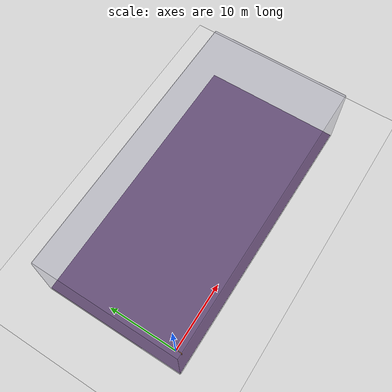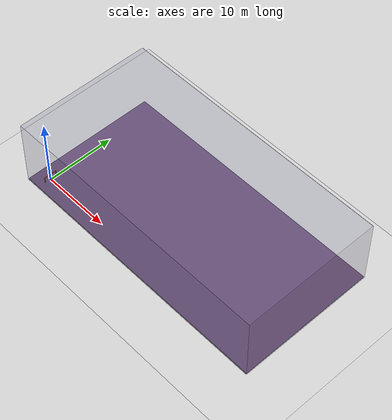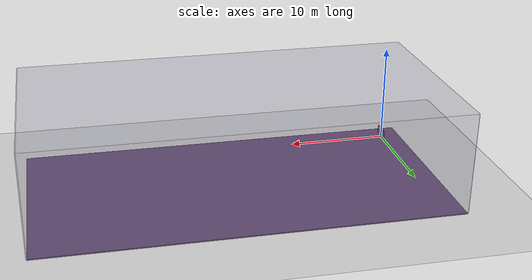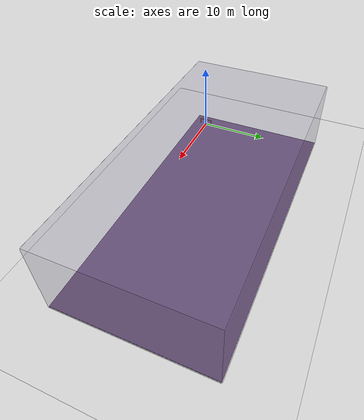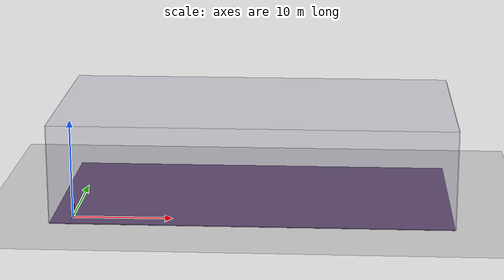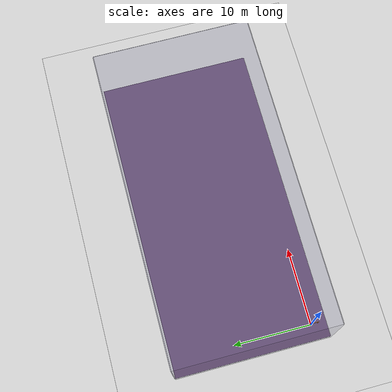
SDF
<sdf version="1.4">
 <world name="smart_drone_simple_world">
  <include><uri>model://ground_plane</uri></include>
  <include><uri>model://sun</uri></include>
  <model name="smart_drone_simple_building">
   <link name="floor">
    <pose>18 8 -0.05 0 -0 0</pose>
    <inertial>
     <mass>1</mass>
     <inertia>
      <ixx>0.166667</ixx>
      <ixy>0</ixy>
      <ixz>0</ixz>
      <iyy>0.166667</iyy>
      <iyz>0</iyz>
      <izz>0.166667</izz>
     </inertia>
    </inertial>
    <visual name="visual">
     <geometry><box><size>40 20 0.2</size></box></geometry>
     <material>
      <script><name>Gazebo/Grey</name><uri>file://media/materials/scripts/gazebo.material</uri></script>
      <shader type="pixel"><normal_map>__default__</normal_map></shader>
      <ambient>0.4 0.3 0.45 1</ambient>
      <diffuse>0.7 0.7 0.7 1</diffuse>
      <specular>0.01 0.01 0.01 1</specular>
      <emissive>0 0 0 1</emissive>
     </material>
    </visual>
   </link>
   <link name="right_wall">
    <pose>18 -2 5 0 -0 0</pose>
    <inertial>
     <mass>1</mass>
     <inertia>
      <ixx>0.166667</ixx>
      <ixy>0</ixy>
      <ixz>0</ixz>
      <iyy>0.166667</iyy>
      <iyz>0</iyz>
      <izz>0.166667</izz>
     </inertia>
    </inertial>
    <visual name="visual">
     <geometry><box><size>40 0.2 10</size></box></geometry>
     <material>
      <lighting>1</lighting>
      <script><uri>file://media/materials/scripts/gazebo.material</uri><name>Gazebo/Grey</name></script>
      <shader type="pixel"><normal_map>__default__</normal_map></shader>
      <ambient>0.3 0.3 0.45 1</ambient>
      <diffuse>0.7 0.7 0.7 1</diffuse>
      <specular>0.01 0.01 0.01 1</specular>
      <emissive>0 0 0 1</emissive>
     </material>
     <transparency>0.95</transparency>
    </visual>
    <collision name="collision">
     <geometry><box><size>40 0.2 10</size></box></geometry>
     <surface>
      <friction>
       <ode><mu>1</mu><mu2>1</mu2><fdir1>0 0 0</fdir1><slip1>0</slip1><slip2>0</slip2></ode>
       <torsional>
        <coefficient>1</coefficient>
        <patch_radius>0</patch_radius>
        <surface_radius>0</surface_radius>
        <use_patch_radius>1</use_patch_radius>
        <ode><slip>0</slip></ode>
       </torsional>
      </friction>
      <bounce><restitution_coefficient>0</restitution_coefficient><threshold>1e+06</threshold></bounce>
      <contact>
       <collide_without_contact>0</collide_without_contact>
       <collide_without_contact_bitmask>1</collide_without_contact_bitmask>
       <collide_bitmask>1</collide_bitmask>
       <ode>
        <soft_cfm>0</soft_cfm>
        <soft_erp>0.2</soft_erp>
        <kp>1e+13</kp>
        <kd>1</kd>
        <max_vel>0.01</max_vel>
        <min_depth>0</min_depth>
       </ode>
       <bullet>
        <split_impulse>1</split_impulse>
        <split_impulse_penetration_threshold>-0.01</split_impulse_penetration_threshold>
        <soft_cfm>0</soft_cfm>
        <soft_erp>0.2</soft_erp>
        <kp>1e+13</kp>
        <kd>1</kd>
       </bullet>
      </contact>
     </surface>
    </collision>
   </link>
   <link name="left_wall">
    <pose>18 18 5 0 -0 0</pose>
    <inertial>
     <mass>1</mass>
     <inertia>
      <ixx>0.166667</ixx>
      <ixy>0</ixy>
      <ixz>0</ixz>
      <iyy>0.166667</iyy>
      <iyz>0</iyz>
      <izz>0.166667</izz>
     </inertia>
    </inertial>
    <visual name="visual">
     <geometry><box><size>40 0.2 10</size></box></geometry>
     <material>
      <lighting>1</lighting>
      <script><uri>file://media/materials/scripts/gazebo.material</uri><name>Gazebo/Grey</name></script>
      <shader type="pixel"><normal_map>__default__</normal_map></shader>
      <ambient>0.3 0.3 0.45 1</ambient>
      <diffuse>0.7 0.7 0.7 1</diffuse>
      <specular>0.01 0.01 0.01 1</specular>
      <emissive>0 0 0 1</emissive>
     </material>
     <transparency>0.95</transparency>
    </visual>
    <collision name="collision">
     <geometry><box><size>40 0.2 10</size></box></geometry>
     <surface>
      <friction>
       <ode><mu>1</mu><mu2>1</mu2><fdir1>0 0 0</fdir1><slip1>0</slip1><slip2>0</slip2></ode>
       <torsional>
        <coefficient>1</coefficient>
        <patch_radius>0</patch_radius>
        <surface_radius>0</surface_radius>
        <use_patch_radius>1</use_patch_radius>
        <ode><slip>0</slip></ode>
       </torsional>
      </friction>
      <bounce><restitution_coefficient>0</restitution_coefficient><threshold>1e+06</threshold></bounce>
      <contact>
       <collide_without_contact>0</collide_without_contact>
       <collide_without_contact_bitmask>1</collide_without_contact_bitmask>
       <collide_bitmask>1</collide_bitmask>
       <ode>
        <soft_cfm>0</soft_cfm>
        <soft_erp>0.2</soft_erp>
        <kp>1e+13</kp>
        <kd>1</kd>
        <max_vel>0.01</max_vel>
        <min_depth>0</min_depth>
       </ode>
       <bullet>
        <split_impulse>1</split_impulse>
        <split_impulse_penetration_threshold>-0.01</split_impulse_penetration_threshold>
        <soft_cfm>0</soft_cfm>
        <soft_erp>0.2</soft_erp>
        <kp>1e+13</kp>
        <kd>1</kd>
       </bullet>
      </contact>
     </surface>
    </collision>
   </link>
   <link name="front_wall">
    <pose>-2 8 5 0 -0 0</pose>
    <inertial>
     <mass>1</mass>
     <inertia>
      <ixx>0.166667</ixx>
      <ixy>0</ixy>
      <ixz>0</ixz>
      <iyy>0.166667</iyy>
      <iyz>0</iyz>
      <izz>0.166667</izz>
     </inertia>
    </inertial>
    <visual name="visual">
     <geometry><box><size>0.2 20 10</size></box></geometry>
     <material>
      <lighting>1</lighting>
      <script><uri>file://media/materials/scripts/gazebo.material</uri><name>Gazebo/Grey</name></script>
      <shader type="pixel"><normal_map>__default__</normal_map></shader>
      <ambient>0.3 0.3 0.45 1</ambient>
      <diffuse>0.7 0.7 0.7 1</diffuse>
      <specular>0.01 0.01 0.01 1</specular>
      <emissive>0 0 0 1</emissive>
     </material>
     <transparency>0.9</transparency>
    </visual>
    <collision name="collision">
     <geometry><box><size>0.2 20 10</size></box></geometry>
     <surface>
      <friction>
       <ode><mu>1</mu><mu2>1</mu2><fdir1>0 0 0</fdir1><slip1>0</slip1><slip2>0</slip2></ode>
       <torsional>
        <coefficient>1</coefficient>
        <patch_radius>0</patch_radius>
        <surface_radius>0</surface_radius>
        <use_patch_radius>1</use_patch_radius>
        <ode><slip>0</slip></ode>
       </torsional>
      </friction>
      <bounce><restitution_coefficient>0</restitution_coefficient><threshold>1e+06</threshold></bounce>
      <contact>
       <collide_without_contact>0</collide_without_contact>
       <collide_without_contact_bitmask>1</collide_without_contact_bitmask>
       <collide_bitmask>1</collide_bitmask>
       <ode>
        <soft_cfm>0</soft_cfm>
        <soft_erp>0.2</soft_erp>
        <kp>1e+13</kp>
        <kd>1</kd>
        <max_vel>0.01</max_vel>
        <min_depth>0</min_depth>
       </ode>
       <bullet>
        <split_impulse>1</split_impulse>
        <split_impulse_penetration_threshold>-0.01</split_impulse_penetration_threshold>
        <soft_cfm>0</soft_cfm>
        <soft_erp>0.2</soft_erp>
        <kp>1e+13</kp>
        <kd>1</kd>
       </bullet>
      </contact>
     </surface>
    </collision>
   </link>
   <link name="rear_wall">
    <pose>38 8 5 0 -0 0</pose>
    <inertial>
     <mass>1</mass>
     <inertia>
      <ixx>0.166667</ixx>
      <ixy>0</ixy>
      <ixz>0</ixz>
      <iyy>0.166667</iyy>
      <iyz>0</iyz>
      <izz>0.166667</izz>
     </inertia>
    </inertial>
    <visual name="visual">
     <geometry><box><size>0.2 20 10</size></box></geometry>
     <material>
      <lighting>1</lighting>
      <script><uri>file://media/materials/scripts/gazebo.material</uri><name>Gazebo/Grey</name></script>
      <shader type="pixel"><normal_map>__default__</normal_map></shader>
      <ambient>0.3 0.3 0.45 1</ambient>
      <diffuse>0.7 0.7 0.7 1</diffuse>
      <specular>0.01 0.01 0.01 1</specular>
      <emissive>0 0 0 1</emissive>
     </material>
     <transparency>0.9</transparency>
    </visual>
    <collision name="collision">
     <geometry><box><size>0.2 20 10</size></box></geometry>
     <surface>
      <friction>
       <ode><mu>1</mu><mu2>1</mu2><fdir1>0 0 0</fdir1><slip1>0</slip1><slip2>0</slip2></ode>
       <torsional>
        <coefficient>1</coefficient>
        <patch_radius>0</patch_radius>
        <surface_radius>0</surface_radius>
        <use_patch_radius>1</use_patch_radius>
        <ode><slip>0</slip></ode>
       </torsional>
      </friction>
      <bounce><restitution_coefficient>0</restitution_coefficient><threshold>1e+06</threshold></bounce>
      <contact>
       <collide_without_contact>0</collide_without_contact>
       <collide_without_contact_bitmask>1</collide_without_contact_bitmask>
       <collide_bitmask>1</collide_bitmask>
       <ode>
        <soft_cfm>0</soft_cfm>
        <soft_erp>0.2</soft_erp>
        <kp>1e+13</kp>
        <kd>1</kd>
        <max_vel>0.01</max_vel>
        <min_depth>0</min_depth>
       </ode>
       <bullet>
        <split_impulse>1</split_impulse>
        <split_impulse_penetration_threshold>-0.01</split_impulse_penetration_threshold>
        <soft_cfm>0</soft_cfm>
        <soft_erp>0.2</soft_erp>
        <kp>1e+13</kp>
        <kd>1</kd>
       </bullet>
      </contact>
     </surface>
    </collision>
   </link>
   <link name="ceiling">
    <pose>18 8 10 0 -0 0</pose>
    <inertial>
     <mass>1</mass>
     <inertia>
      <ixx>0.166667</ixx>
      <ixy>0</ixy>
      <ixz>0</ixz>
      <iyy>0.166667</iyy>
      <iyz>0</iyz>
      <izz>0.166667</izz>
     </inertia>
    </inertial>
    <visual name="visual">
     <geometry><box><size>40 20 0.2</size></box></geometry>
     <material>
      <lighting>1</lighting>
      <script><uri>file://media/materials/scripts/gazebo.material</uri><name>Gazebo/Grey</name></script>
      <shader type="pixel"><normal_map>__default__</normal_map></shader>
      <ambient>0.3 0.3 0.45 1</ambient>
      <diffuse>0.7 0.7 0.7 1</diffuse>
      <specular>0.01 0.01 0.01 1</specular>
      <emissive>0 0 0 1</emissive>
     </material>
     <transparency>0.95</transparency>
    </visual>
    <collision name="collision">
     <geometry><box><size>40 20 0.2</size></box></geometry>
     <surface>
      <friction>
       <ode><mu>1</mu><mu2>1</mu2><fdir1>0 0 0</fdir1><slip1>0</slip1><slip2>0</slip2></ode>
       <torsional>
        <coefficient>1</coefficient>
        <patch_radius>0</patch_radius>
        <surface_radius>0</surface_radius>
        <use_patch_radius>1</use_patch_radius>
        <ode><slip>0</slip></ode>
       </torsional>
      </friction>
      <bounce><restitution_coefficient>0</restitution_coefficient><threshold>1e+06</threshold></bounce>
      <contact>
       <collide_without_contact>0</collide_without_contact>
       <collide_without_contact_bitmask>1</collide_without_contact_bitmask>
       <collide_bitmask>1</collide_bitmask>
       <ode>
        <soft_cfm>0</soft_cfm>
        <soft_erp>0.2</soft_erp>
        <kp>1e+13</kp>
        <kd>1</kd>
        <max_vel>0.01</max_vel>
        <min_depth>0</min_depth>
       </ode>
       <bullet>
        <split_impulse>1</split_impulse>
        <split_impulse_penetration_threshold>-0.01</split_impulse_penetration_threshold>
        <soft_cfm>0</soft_cfm>
        <soft_erp>0.2</soft_erp>
        <kp>1e+13</kp>
        <kd>1</kd>
       </bullet>
      </contact>
     </surface>
    </collision>
   </link>
   <static>1</static>
  </model>
  <model name="smart_drone_orange_gate0">
   <link name="left">
    <pose>0 -0.9 0 0 -0 0</pose>
    <inertial>
     <mass>1</mass>
     <inertia>
      <ixx>0.166667</ixx>
      <ixy>0</ixy>
      <ixz>0</ixz>
      <iyy>0.166667</iyy>
      <iyz>0</iyz>
      <izz>0.166667</izz>
     </inertia>
     <pose>0 -0.9 0 0 -0 0</pose>
    </inertial>
    <visual name="visual">
     <geometry><box><size>0.05 0.1 2</size></box></geometry>
     <material>
      <lighting>1</lighting>
      <script><uri>file://media/materials/scripts/gazebo.material</uri><name>Gazebo/Grey</name></script>
      <shader type="pixel"><normal_map>__default__</normal_map></shader>
      <ambient>0.9 0.54 0.18 1</ambient>
      <diffuse>0.9 0.54 0.18 1</diffuse>
      <specular>0.9 0.54 0.18 1</specular>
      <emissive>0 0 0 1</emissive>
     </material>
    </visual>
    <collision name="collision">
     <geometry><box><size>0.05 0.1 2</size></box></geometry>
     <surface>
      <friction>
       <ode><mu>1</mu><mu2>1</mu2><fdir1>0 0 0</fdir1><slip1>0</slip1><slip2>0</slip2></ode>
       <torsional>
        <coefficient>1</coefficient>
        <patch_radius>0</patch_radius>
        <surface_radius>0</surface_radius>
        <use_patch_radius>1</use_patch_radius>
        <ode><slip>0</slip></ode>
       </torsional>
      </friction>
      <bounce><restitution_coefficient>0</restitution_coefficient><threshold>1e+06</threshold></bounce>
      <contact>
       <collide_without_contact>0</collide_without_contact>
       <collide_without_contact_bitmask>1</collide_without_contact_bitmask>
       <collide_bitmask>1</collide_bitmask>
       <ode>
        <soft_cfm>0</soft_cfm>
        <soft_erp>0.2</soft_erp>
        <kp>1e+13</kp>
        <kd>1</kd>
        <max_vel>0.01</max_vel>
        <min_depth>0</min_depth>
       </ode>
       <bullet>
        <split_impulse>1</split_impulse>
        <split_impulse_penetration_threshold>-0.01</split_impulse_penetration_threshold>
        <soft_cfm>0</soft_cfm>
        <soft_erp>0.2</soft_erp>
        <kp>1e+13</kp>
        <kd>1</kd>
       </bullet>
      </contact>
     </surface>
    </collision>
   </link>
   <link name="top">
    <pose>0 0 0.95 0 -0 0</pose>
    <inertial>
     <mass>1</mass>
     <inertia>
      <ixx>0.166667</ixx>
      <ixy>0</ixy>
      <ixz>0</ixz>
      <iyy>0.166667</iyy>
      <iyz>0</iyz>
      <izz>0.166667</izz>
     </inertia>
     <pose>0 0 0.95 0 -0 0</pose>
    </inertial>
    <visual name="visual">
     <geometry><box><size>0.05 1.7 0.1</size></box></geometry>
     <material>
      <lighting>1</lighting>
      <script><uri>file://media/materials/scripts/gazebo.material</uri><name>Gazebo/Grey</name></script>
      <shader type="pixel"><normal_map>__default__</normal_map></shader>
      <ambient>0.9 0.54 0.18 1</ambient>
      <diffuse>0.9 0.54 0.18 1</diffuse>
      <specular>0.9 0.54 0.18 1</specular>
      <emissive>0 0 0 1</emissive>
     </material>
    </visual>
    <collision name="collision">
     <geometry><box><size>0.05 1.7 0.1</size></box></geometry>
     <surface>
      <friction>
       <ode><mu>1</mu><mu2>1</mu2><fdir1>0 0 0</fdir1><slip1>0</slip1><slip2>0</slip2></ode>
       <torsional>
        <coefficient>1</coefficient>
        <patch_radius>0</patch_radius>
        <surface_radius>0</surface_radius>
        <use_patch_radius>1</use_patch_radius>
        <ode><slip>0</slip></ode>
       </torsional>
      </friction>
      <bounce><restitution_coefficient>0</restitution_coefficient><threshold>1e+06</threshold></bounce>
      <contact>
       <collide_without_contact>0</collide_without_contact>
       <collide_without_contact_bitmask>1</collide_without_contact_bitmask>
       <collide_bitmask>1</collide_bitmask>
       <ode>
        <soft_cfm>0</soft_cfm>
        <soft_erp>0.2</soft_erp>
        <kp>1e+13</kp>
        <kd>1</kd>
        <max_vel>0.01</max_vel>
        <min_depth>0</min_depth>
       </ode>
       <bullet>
        <split_impulse>1</split_impulse>
        <split_impulse_penetration_threshold>-0.01</split_impulse_penetration_threshold>
        <soft_cfm>0</soft_cfm>
        <soft_erp>0.2</soft_erp>
        <kp>1e+13</kp>
        <kd>1</kd>
       </bullet>
      </contact>
     </surface>
    </collision>
   </link>
   <link name="bot">
    <pose>0 0 -0.95 0 -0 0</pose>
    <inertial>
     <mass>1</mass>
     <inertia>
      <ixx>0.166667</ixx>
      <ixy>0</ixy>
      <ixz>0</ixz>
      <iyy>0.166667</iyy>
      <iyz>0</iyz>
      <izz>0.166667</izz>
     </inertia>
     <pose>0 0 -0.95 0 -0 0</pose>
    </inertial>
    <visual name="visual">
     <geometry><box><size>0.05 1.7 0.1</size></box></geometry>
     <material>
      <lighting>1</lighting>
      <script><uri>file://media/materials/scripts/gazebo.material</uri><name>Gazebo/Grey</name></script>
      <shader type="pixel"><normal_map>__default__</normal_map></shader>
      <ambient>0.9 0.54 0.18 1</ambient>
      <diffuse>0.9 0.54 0.18 1</diffuse>
      <specular>0.9 0.54 0.18 1</specular>
      <emissive>0 0 0 1</emissive>
     </material>
    </visual>
    <collision name="collision">
     <geometry><box><size>0.05 1.7 0.1</size></box></geometry>
     <surface>
      <friction>
       <ode><mu>1</mu><mu2>1</mu2><fdir1>0 0 0</fdir1><slip1>0</slip1><slip2>0</slip2></ode>
       <torsional>
        <coefficient>1</coefficient>
        <patch_radius>0</patch_radius>
        <surface_radius>0</surface_radius>
        <use_patch_radius>1</use_patch_radius>
        <ode><slip>0</slip></ode>
       </torsional>
      </friction>
      <bounce><restitution_coefficient>0</restitution_coefficient><threshold>1e+06</threshold></bounce>
      <contact>
       <collide_without_contact>0</collide_without_contact>
       <collide_without_contact_bitmask>1</collide_without_contact_bitmask>
       <collide_bitmask>1</collide_bitmask>
       <ode>
        <soft_cfm>0</soft_cfm>
        <soft_erp>0.2</soft_erp>
        <kp>1e+13</kp>
        <kd>1</kd>
        <max_vel>0.01</max_vel>
        <min_depth>0</min_depth>
       </ode>
       <bullet>
        <split_impulse>1</split_impulse>
        <split_impulse_penetration_threshold>-0.01</split_impulse_penetration_threshold>
        <soft_cfm>0</soft_cfm>
        <soft_erp>0.2</soft_erp>
        <kp>1e+13</kp>
        <kd>1</kd>
       </bullet>
      </contact>
     </surface>
    </collision>
   </link>
   <link name="right">
    <pose>0 0.9 0 0 -0 0</pose>
    <inertial>
     <mass>1</mass>
     <inertia>
      <ixx>0.166667</ixx>
      <ixy>0</ixy>
      <ixz>0</ixz>
      <iyy>0.166667</iyy>
      <iyz>0</iyz>
      <izz>0.166667</izz>
     </inertia>
     <pose>0 0.9 0 0 -0 0</pose>
    </inertial>
    <visual name="visual">
     <geometry><box><size>0.05 0.1 2</size></box></geometry>
     <material>
      <lighting>1</lighting>
      <script><uri>file://media/materials/scripts/gazebo.material</uri><name>Gazebo/Grey</name></script>
      <shader type="pixel"><normal_map>__default__</normal_map></shader>
      <ambient>0.9 0.54 0.18 1</ambient>
      <diffuse>0.9 0.54 0.18 1</diffuse>
      <specular>0.9 0.54 0.18 1</specular>
      <emissive>0 0 0 1</emissive>
     </material>
    </visual>
    <collision name="collision">
     <geometry><box><size>0.05 0.1 2</size></box></geometry>
     <surface>
      <friction>
       <ode><mu>1</mu><mu2>1</mu2><fdir1>0 0 0</fdir1><slip1>0</slip1><slip2>0</slip2></ode>
       <torsional>
        <coefficient>1</coefficient>
        <patch_radius>0</patch_radius>
        <surface_radius>0</surface_radius>
        <use_patch_radius>1</use_patch_radius>
        <ode><slip>0</slip></ode>
       </torsional>
      </friction>
      <bounce><restitution_coefficient>0</restitution_coefficient><threshold>1e+06</threshold></bounce>
      <contact>
       <collide_without_contact>0</collide_without_contact>
       <collide_without_contact_bitmask>1</collide_without_contact_bitmask>
       <collide_bitmask>1</collide_bitmask>
       <ode>
        <soft_cfm>0</soft_cfm>
        <soft_erp>0.2</soft_erp>
        <kp>1e+13</kp>
        <kd>1</kd>
        <max_vel>0.01</max_vel>
        <min_depth>0</min_depth>
       </ode>
       <bullet>
        <split_impulse>1</split_impulse>
        <split_impulse_penetration_threshold>-0.01</split_impulse_penetration_threshold>
        <soft_cfm>0</soft_cfm>
        <soft_erp>0.2</soft_erp>
        <kp>1e+13</kp>
        <kd>1</kd>
       </bullet>
      </contact>
     </surface>
    </collision>
   </link>
   <static>1</static>
  </model>
 </world>
</sdf>
